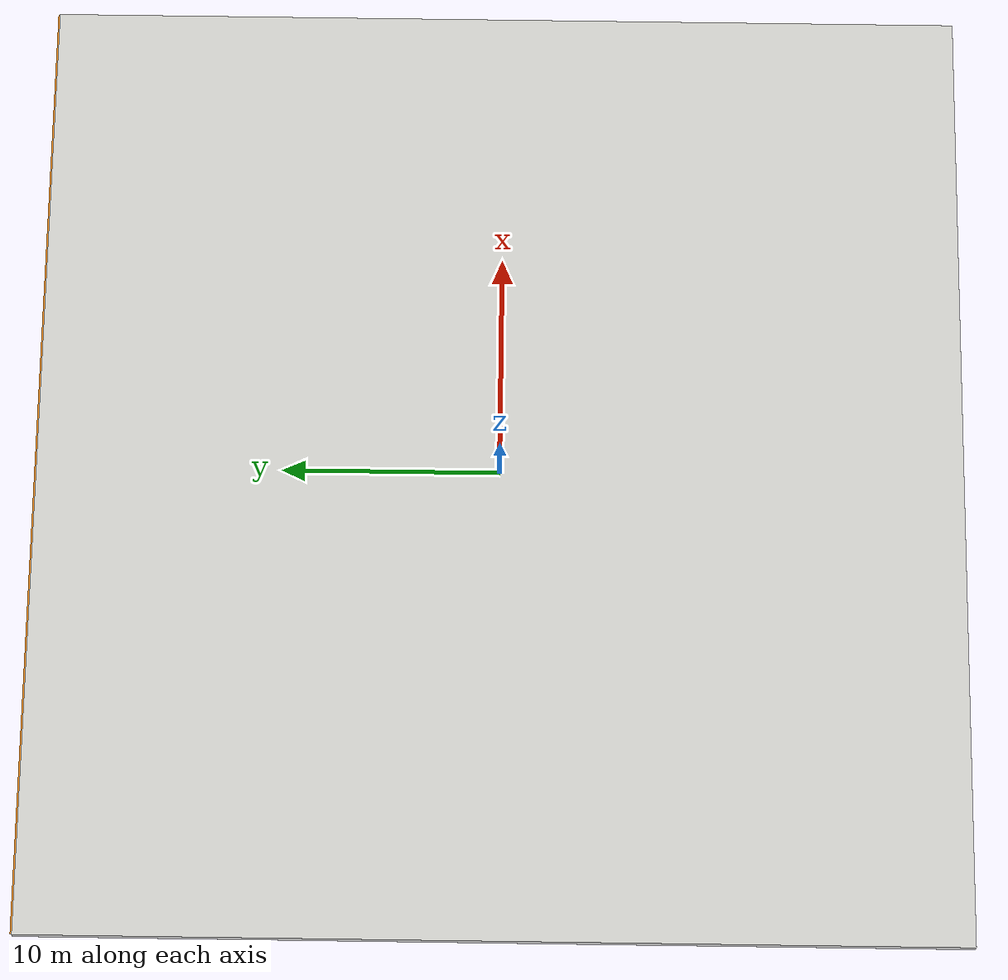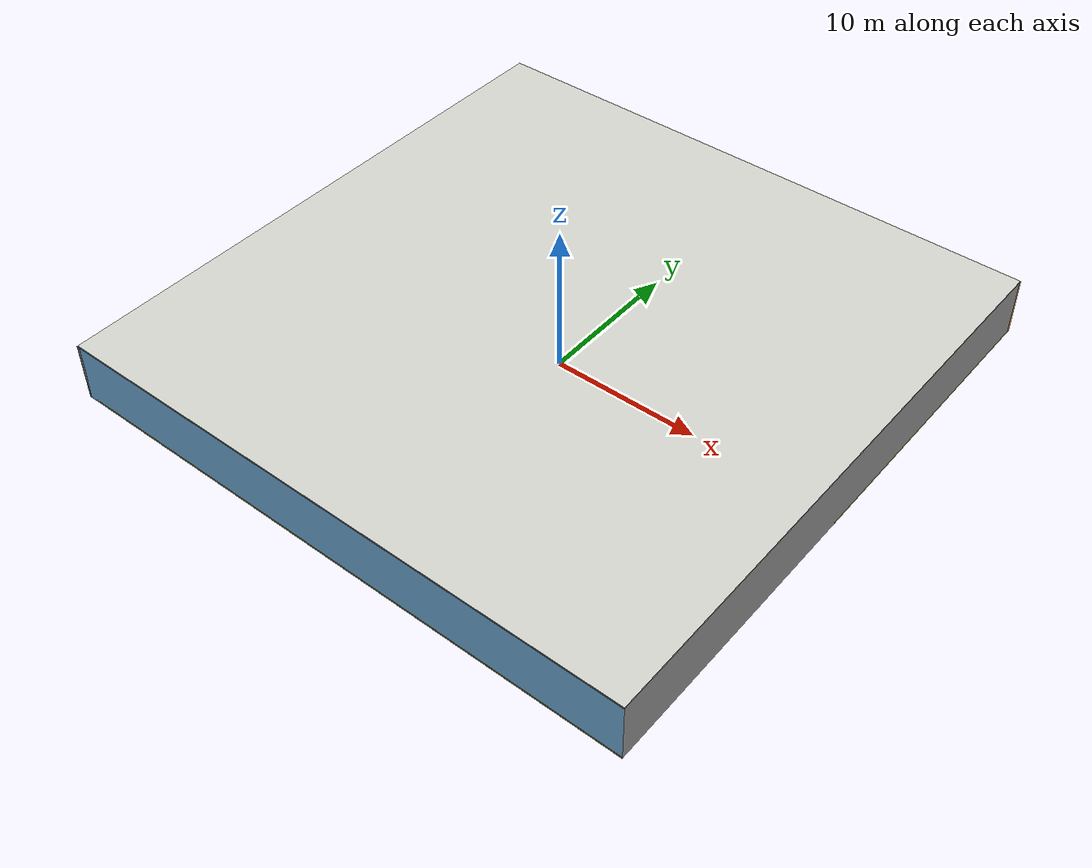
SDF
<sdf version="1.4">
 <world name="default">
  <physics type="ode">
   <max_step_size>0.001</max_step_size>
   <real_time_factor>1</real_time_factor>
   <real_time_update_rate>1000</real_time_update_rate>
   <gravity>0 0 -9.8</gravity>
  </physics>
  <scene><ambient>0.4 0.4 0.4 1</ambient><background>0.7 0.7 0.7 1</background><shadows>1</shadows></scene>
  <model name="Surrounding">
   <static>1</static>
   <link name="Ceiling">
    <collision name="Ceiling_Collision"><geometry><box><size>40 40 0.1</size></box></geometry></collision>
    <visual name="Ceiling_Visual">
     <geometry><box><size>40 40 0.1</size></box></geometry>
     <material>
      <script><uri>file://media/materials/scripts/gazebo.material</uri><name>Gazebo/CeilingTiled</name></script>
     </material>
    </visual>
    <pose>0 0 4.05 0 0 0</pose>
   </link>
   <link name="Wall_South">
    <collision name="Wall_South_Collision">
     <geometry><box><size>40 0 4</size></box></geometry>
     <pose>0 0 2 0 -0 0</pose>
    </collision>
    <visual name="Wall_South_Visual">
     <pose>0 0 2 0 -0 0</pose>
     <geometry><box><size>40 0 4</size></box></geometry>
     <material>
      <script><uri>file://media/materials/scripts/gazebo.material</uri><name>Gazebo/SkyBlue</name></script>
     </material>
    </visual>
    <velocity_decay><linear>0</linear><angular>0</angular></velocity_decay>
    <pose>0 -20 0 0 -0 0</pose>
   </link>
   <link name="Wall_East">
    <collision name="Wall_21_Collision">
     <geometry><box><size>40 0 4</size></box></geometry>
     <pose>0 0 2 0 -0 0</pose>
    </collision>
    <visual name="Wall_21_Visual">
     <pose>0 0 2 0 -0 0</pose>
     <geometry><box><size>40 0 4</size></box></geometry>
     <material>
      <script><uri>file://media/materials/scripts/gazebo.material</uri><name>Gazebo/CloudySky</name></script>
     </material>
    </visual>
    <velocity_decay><linear>0</linear><angular>0</angular></velocity_decay>
    <pose>20 0 0 0 -0 1.5708</pose>
   </link>
   <link name="Wall_North">
    <collision name="Wall_22_Collision">
     <geometry><box><size>40 0.2 4</size></box></geometry>
     <pose>0 0 2 0 -0 0</pose>
    </collision>
    <visual name="Wall_22_Visual">
     <pose>0 0 2 0 -0 0</pose>
     <geometry><box><size>40 0.2 4</size></box></geometry>
     <material>
      <script><uri>file://media/materials/scripts/gazebo.material</uri><name>Gazebo/Orange</name></script>
     </material>
    </visual>
    <velocity_decay><linear>0</linear><angular>0</angular></velocity_decay>
    <pose>0 20 0 0 -0 0</pose>
   </link>
   <link name="Wall_West">
    <collision name="Wall_23_Collision">
     <geometry><box><size>40 0.2 4</size></box></geometry>
     <pose>0 0 2 0 -0 0</pose>
    </collision>
    <visual name="Wall_23_Visual">
     <pose>0 0 2 0 -0 0</pose>
     <geometry><box><size>40 0.2 4</size></box></geometry>
     <material>
      <script><uri>file://media/materials/scripts/gazebo.material</uri><name>Gazebo/Grey</name></script>
     </material>
    </visual>
    <velocity_decay><linear>0</linear><angular>0</angular></velocity_decay>
    <pose>-20 0 0 0 0 -1.5708</pose>
   </link>
   <link name="Ground_link">
    <collision name="collision">
     <pose>0 0 .05 0 -0 0</pose>
     <geometry><box><size>40 40 0.1</size></box></geometry>
    </collision>
    <visual name="visual">
     <pose>0 0 .05 0 -0 0</pose>
     <geometry><box><size>40 40 0.1</size></box></geometry>
     <material>
      <script><uri>file://media/materials/scripts/gazebo.material</uri><name>Gazebo/Yellow</name></script>
     </material>
    </visual>
   </link>
   <static>1</static>
  </model>
  <spherical_coordinates>
   <surface_model>EARTH_WGS84</surface_model>
   <latitude_deg>0</latitude_deg>
   <longitude_deg>0</longitude_deg>
   <elevation>0</elevation>
   <heading_deg>0</heading_deg>
  </spherical_coordinates>
  <light name="lightball_0" type="diffuse">
   <diffuse>0.8 0.8 0.8 1</diffuse>
   <specular>0.2 0.2 0.2 1</specular>
   <attenuation>
    <range>100</range>
    <constant>0.7</constant>
    <linear>0.01</linear>
    <quadratic>0.001</quadratic>
   </attenuation>
   <direction>-0.5 0.1 -0.9</direction>
   <pose>19.6641678225 -13.4696421574 2.36045238017 0 0 0</pose>
  </light>
  <light name="lightball_1" type="diffuse">
   <diffuse>0.8 0.8 0.8 1</diffuse>
   <specular>0.2 0.2 0.2 1</specular>
   <attenuation>
    <range>100</range>
    <constant>0.7</constant>
    <linear>0.01</linear>
    <quadratic>0.001</quadratic>
   </attenuation>
   <direction>-0.5 0.1 -0.9</direction>
   <pose>-3.00483595941 -2.18783184697 3.30027225736 0 0 0</pose>
  </light>
  <light name="lightball_2" type="diffuse">
   <diffuse>0.8 0.8 0.8 1</diffuse>
   <specular>0.2 0.2 0.2 1</specular>
   <attenuation>
    <range>100</range>
    <constant>0.7</constant>
    <linear>0.01</linear>
    <quadratic>0.001</quadratic>
   </attenuation>
   <direction>-0.5 0.1 -0.9</direction>
   <pose>12.1797264831 8.7129959718 1.57098691591 0 0 0</pose>
  </light>
  <light name="lightball_3" type="diffuse">
   <diffuse>0.8 0.8 0.8 1</diffuse>
   <specular>0.2 0.2 0.2 1</specular>
   <attenuation>
    <range>100</range>
    <constant>0.7</constant>
    <linear>0.01</linear>
    <quadratic>0.001</quadratic>
   </attenuation>
   <direction>-0.5 0.1 -0.9</direction>
   <pose>6.83578921094 -3.87929376498 3.65816023505 0 0 0</pose>
  </light>
  <light name="lightball_4" type="diffuse">
   <diffuse>0.8 0.8 0.8 1</diffuse>
   <specular>0.2 0.2 0.2 1</specular>
   <attenuation>
    <range>100</range>
    <constant>0.7</constant>
    <linear>0.01</linear>
    <quadratic>0.001</quadratic>
   </attenuation>
   <direction>-0.5 0.1 -0.9</direction>
   <pose>-2.9161387499 -12.0742729617 1.61531192809 0 0 0</pose>
  </light>
  <include><uri>model://cabinet</uri><pose>-17.933322599 -2.25263223428 0 0 0 0.676346144585</pose></include>
  <include><uri>model://cabinet</uri><pose>-16.711964119 6.27937287298 0 0 0 0.962040402858</pose></include>
  <include>
   <uri>model://robocup_3Dsim_goal</uri>
   <pose>-18.443466207 12.6286611092 0 0 0 3.10386058934</pose>
  </include>
  <include>
   <uri>model://construction_cone</uri>
   <pose>-16.4824930669 14.3128327706 0 0 0 2.22769843418</pose>
  </include>
  <include><uri>model://table</uri><pose>-15.4006871298 -7.64319131246 0 0 0 0.959496202647</pose></include>
  <include><uri>model://table</uri><pose>-13.8605777689 1.33585387469 0 0 0 2.46966298953</pose></include>
  <include><uri>model://table</uri><pose>-7.74585779742 -3.00539952782 0 0 0 1.59629901052</pose></include>
  <include>
   <uri>model://textured_shapes</uri>
   <pose>-6.13134308386 12.7384420428 0 0 0 2.66859571003</pose>
  </include>
  <include>
   <uri>model://construction_cone</uri>
   <pose>-2.97925319854 -11.0115361345 0 0 0 2.9596922898</pose>
  </include>
  <include><uri>model://table</uri><pose>-2.74193882457 5.5804119772 0 0 0 2.88208287515</pose></include>
  <include>
   <uri>model://robocup_3Dsim_goal</uri>
   <pose>1.33076617245 -1.45144099641 0 0 0 1.75171330296</pose>
  </include>
  <include>
   <uri>model://construction_cone</uri>
   <pose>-0.683076230452 -0.694418691571 0 0 0 1.45558795184</pose>
  </include>
  <include><uri>model://table</uri><pose>0.535654472892 5.92733347487 0 0 0 1.15405366607</pose></include>
  <include>
   <uri>model://robocup_3Dsim_goal</uri>
   <pose>-0.133678750304 11.7932092139 0 0 0 1.14475895441</pose>
  </include>
  <include>
   <uri>model://construction_cone</uri>
   <pose>3.30346038756 -1.56004662659 0 0 0 0.695305286057</pose>
  </include>
  <include><uri>model://cabinet</uri><pose>3.21891464857 4.01492865358 0 0 0 0.88290283367</pose></include>
  <include><uri>model://cabinet</uri><pose>2.51442387522 6.50592667196 0 0 0 2.60819156891</pose></include>
  <include><uri>model://cabinet</uri><pose>3.08647939994 15.6762611155 0 0 0 1.90174732157</pose></include>
  <include><uri>model://cabinet</uri><pose>5.5245606049 12.8296480325 0 0 0 1.87774155981</pose></include>
  <include><uri>model://table</uri><pose>8.93620054774 0.175294060411 0 0 0 1.69457308702</pose></include>
  <include>
   <uri>model://textured_shapes</uri>
   <pose>12.3198517106 -17.3015522896 0 0 0 1.30166324774</pose>
  </include>
  <include>
   <uri>model://construction_cone</uri>
   <pose>13.6678196095 7.12509675213 0 0 0 0.935587898041</pose>
  </include>
  <include><uri>model://table</uri><pose>14.6257155633 -13.3617803723 0 0 0 1.58315685048</pose></include>
  <include>
   <uri>model://robocup_3Dsim_goal</uri>
   <pose>15.4876757573 -11.0625488162 0 0 0 1.72889373711</pose>
  </include>
  <include><uri>model://cabinet</uri><pose>15.9234368799 12.1443357257 0 0 0 1.15412974963</pose></include>
  <include>
   <uri>model://construction_cone</uri>
   <pose>17.4870580411 19.6133210183 0 0 0 0.773999238718</pose>
  </include>
 </world>
</sdf>

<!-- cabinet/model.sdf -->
<sdf version="1.5">
  <model name="cabinet">
    <static>true</static>
    <link name="cabinet_bottom_plate">
      <inertial>
        <pose>0 0 -1 0 0 0</pose>
        <inertia>
          <ixx>2.050000</ixx>
          <ixy>0</ixy>
          <ixz>0</ixz>
          <iyy>2.050000</iyy>
          <iyz>0</iyz>
          <izz>2.050000</izz>
        </inertia>
        <mass>25.000000</mass>
      </inertial>
      <collision name="cabinet_bottom_plate_geom">
        <pose>0 0 0.010000 0 0 0</pose>
        <geometry>
          <box>
            <size>0.450000 0.450000 0.020000</size>
          </box>
        </geometry>
      </collision>
      <visual name="cabinet_bottom_plate_geom_visual">
        <pose>0 0 0.010000 0 0 0</pose>
        <geometry>
          <box>
            <size>0.450000 0.450000 0.020000</size>
          </box>
        </geometry>
        <material>
          <script>
            <uri>model://media/materials/scripts/gazebo.material</uri>
            <name>Gazebo/Wood</name>
          </script>
        </material>
      </visual>
      <collision name="cabinet_bottom_plate_geom_cabinet_back_plate">
        <pose>0.235000 0 0.510000 0 0 0</pose>
        <geometry>
          <box>
            <size>0.020000 0.450000 1.020000</size>
          </box>
        </geometry>
      </collision>
      <visual name="cabinet_bottom_plate_geom_cabinet_back_plate_visual">
        <pose>0.235000 0 0.510000 0 0 0</pose>
        <geometry>
          <box>
            <size>0.020000 0.450000 1.020000</size>
          </box>
        </geometry>
        <material>
          <script>
            <uri>model://media/materials/scripts/gazebo.material</uri>
            <name>Gazebo/Wood</name>
          </script>
        </material>
      </visual>
      <collision name="cabinet_bottom_plate_geom_cabinet_left_plate">
        <pose>0 0.235000 0.510000 0 0 0</pose>
        <geometry>
          <box>
            <size>0.450000 0.020000 1.020000</size>
          </box>
        </geometry>
      </collision>
      <visual name="cabinet_bottom_plate_geom_cabinet_left_plate_visual">
        <pose>0 0.235000 0.510000 0 0 0</pose>
        <geometry>
          <box>
            <size>0.450000 0.020000 1.020000</size>
          </box>
        </geometry>
        <material>
          <script>
            <uri>model://media/materials/scripts/gazebo.material</uri>
            <name>Gazebo/Wood</name>
          </script>
        </material>
      </visual>
      <collision name="cabinet_bottom_plate_geom_cabinet_middle_plate">
        <pose>0 0 0.510000 0 0 0</pose>
        <geometry>
          <box>
            <size>0.450000 0.450000 0.020000</size>
          </box>
        </geometry>
      </collision>
      <visual name="cabinet_bottom_plate_geom_cabinet_middle_plate_visual">
        <pose>0 0 0.510000 0 0 0</pose>
        <geometry>
          <box>
            <size>0.450000 0.450000 0.020000</size>
          </box>
        </geometry>
        <material>
          <script>
            <uri>model://media/materials/scripts/gazebo.material</uri>
            <name>Gazebo/Wood</name>
          </script>
        </material>
      </visual>
      <collision name="cabinet_bottom_plate_geom_cabinet_right_plate">
        <pose>0 -0.235000 0.510000 0 0 0</pose>
        <geometry>
          <box>
            <size>0.450000 0.020000 1.020000</size>
          </box>
        </geometry>
      </collision>
      <visual name="cabinet_bottom_plate_geom_cabinet_right_plate_visual">
        <pose>0 -0.235000 0.510000 0 0 0</pose>
        <geometry>
          <box>
            <size>0.450000 0.020000 1.020000</size>
          </box>
        </geometry>
        <material>
          <script>
            <uri>model://media/materials/scripts/gazebo.material</uri>
            <name>Gazebo/Wood</name>
          </script>
        </material>
      </visual>
      <collision name="cabinet_bottom_plate_geom_cabinet_top_plate">
        <pose>0 0 1.010000 0 0 0</pose>
        <geometry>
          <box>
            <size>0.450000 0.450000 0.020000</size>
          </box>
        </geometry>
      </collision>
      <visual name="cabinet_bottom_plate_geom_cabinet_top_plate_visual">
        <pose>0 0 1.010000 0 0 0</pose>
        <geometry>
          <box>
            <size>0.450000 0.450000 0.020000</size>
          </box>
        </geometry>
        <material>
          <script>
            <uri>model://media/materials/scripts/gazebo.material</uri>
            <name>Gazebo/Wood</name>
          </script>
        </material>
      </visual>
    </link>
  </model>
</sdf>

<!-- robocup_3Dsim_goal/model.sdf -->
<sdf version="1.5">
  <model name="robocup_3d_goal">
    <static>true</static>
    <link name="left_post">
      <pose>0 1.05 0.45 0 0 0</pose>
      <collision name="collision">
        <geometry>
          <cylinder>
            <radius>0.05</radius>
            <length>0.9</length>
          </cylinder>
        </geometry>
      </collision>
      <visual name="visual">
        <geometry>
          <cylinder>
            <radius>0.05</radius>
            <length>0.9</length>
          </cylinder>
        </geometry>
        <material>
          <script>
            <uri>file://media/materials/scripts/gazebo.material</uri>
            <name>Gazebo/ZincYellow</name>
          </script>
        </material>
      </visual>
    </link>
    <link name="left_support_horiz_lower">
      <pose>0.30 1.05 0.01 0 0 0</pose>
      <collision name="collision">
        <geometry>
          <box>
            <size>0.50 0.02 0.02</size>
          </box>
        </geometry>
      </collision>
      <visual name="visual">
        <geometry>
          <box>
            <size>0.50 0.02 0.02</size>
          </box>
        </geometry>
        <material>
          <script>
            <uri>file://media/materials/scripts/gazebo.material</uri>
            <name>Gazebo/White</name>
          </script>
        </material>
      </visual>
    </link>
    <link name="left_support_horiz_upper">
      <pose>0.30 1.05 0.79 0 0 0</pose>
      <collision name="collision">
        <geometry>
          <box>
            <size>0.50 0.02 0.02</size>
          </box>
        </geometry>
      </collision>
      <visual name="visual">
        <geometry>
          <box>
            <size>0.50 0.02 0.02</size>
          </box>
        </geometry>
        <material>
          <script>
            <uri>file://media/materials/scripts/gazebo.material</uri>
            <name>Gazebo/White</name>
          </script>
        </material>
      </visual>
    </link>
    <link name="left_support_vertical">
      <pose>0.56 1.05 0.4 0 1.5708 0</pose>
      <collision name="collision">
        <geometry>
          <box>
            <size>0.80 0.02 0.02</size>
          </box>
        </geometry>
      </collision>
      <visual name="visual">
        <geometry>
          <box>
            <size>0.80 0.02 0.02</size>
          </box>
        </geometry>
        <material>
          <script>
            <uri>file://media/materials/scripts/gazebo.material</uri>
            <name>Gazebo/White</name>
          </script>
        </material>
      </visual>
    </link>
    <link name="right_support_horiz_lower">
      <pose>0.30 -1.05 0.01 0 0 0</pose>
      <collision name="collision">
        <geometry>
          <box>
            <size>0.50 0.02 0.02</size>
          </box>
        </geometry>
      </collision>
      <visual name="visual">
        <geometry>
          <box>
            <size>0.50 0.02 0.02</size>
          </box>
        </geometry>
        <material>
          <script>
            <uri>file://media/materials/scripts/gazebo.material</uri>
            <name>Gazebo/White</name>
          </script>
        </material>
      </visual>
    </link>
    <link name="right_support_horiz_upper">
      <pose>0.30 -1.05 0.79 0 0 0</pose>
      <collision name="collision">
        <geometry>
          <box>
            <size>0.50 0.02 0.02</size>
          </box>
        </geometry>
      </collision>
      <visual name="visual">
        <geometry>
          <box>
            <size>0.50 0.02 0.02</size>
          </box>
        </geometry>
        <material>
          <script>
            <uri>file://media/materials/scripts/gazebo.material</uri>
            <name>Gazebo/White</name>
          </script>
        </material>
      </visual>
    </link>
    <link name="right_support_vertical">
      <pose>0.56 -1.05 0.4 0 1.5708 0</pose>
      <collision name="collision">
        <geometry>
          <box>
            <size>0.80 0.02 0.02</size>
          </box>
        </geometry>
      </collision>
      <visual name="visual">
        <geometry>
          <box>
            <size>0.80 0.02 0.02</size>
          </box>
        </geometry>
        <material>
          <script>
            <uri>file://media/materials/scripts/gazebo.material</uri>
            <name>Gazebo/White</name>
          </script>
        </material>
      </visual>
    </link>
    <link name="center_support_horiz_lower">
      <pose>0.56 0 0.01 0 1.5708 0</pose>
      <collision name="collision">
        <geometry>
          <box>
            <size>0.02 2.08 0.02</size>
          </box>
        </geometry>
      </collision>
      <visual name="visual">
        <geometry>
          <box>
            <size>0.02 2.08 0.02</size>
          </box>
        </geometry>
        <material>
          <script>
            <uri>file://media/materials/scripts/gazebo.material</uri>
            <name>Gazebo/White</name>
          </script>
        </material>
      </visual>
    </link>
    <link name="center_support_horiz_upper">
      <pose>0.56 0 0.79 0 1.5708 0</pose>
      <collision name="collision">
        <geometry>
          <box>
            <size>0.02 2.08 0.02</size>
          </box>
        </geometry>
      </collision>
      <visual name="visual">
        <geometry>
          <box>
            <size>0.02 2.08 0.02</size>
          </box>
        </geometry>
        <material>
          <script>
            <uri>file://media/materials/scripts/gazebo.material</uri>
            <name>Gazebo/White</name>
          </script>
        </material>
      </visual>
    </link>
    <link name="right_post">
      <pose>0 -1.05 0.45 0 0 0</pose>
      <collision name="collision">
        <geometry>
          <cylinder>
            <radius>0.05</radius>
            <length>0.9</length>
          </cylinder>
        </geometry>
      </collision>
      <visual name="visual">
        <geometry>
          <cylinder>
            <radius>0.05</radius>
            <length>0.9</length>
          </cylinder>
        </geometry>
        <material>
          <script>
            <uri>file://media/materials/scripts/gazebo.material</uri>
            <name>Gazebo/ZincYellow</name>
          </script>
        </material>
      </visual>
    </link>
    <link name="crossbar">
      <pose>0 0 0.85 1.57 1.57 0</pose>
      <collision name="collision">
        <geometry>
          <cylinder>
            <radius>0.05</radius>
            <length>2.0</length>
          </cylinder>
        </geometry>
      </collision>
      <visual name="visual">
        <geometry>
          <cylinder>
            <radius>0.05</radius>
            <length>2.0</length>
          </cylinder>
        </geometry>
        <material>
          <script>
            <uri>file://media/materials/scripts/gazebo.material</uri>
            <name>Gazebo/ZincYellow</name>
          </script>
        </material>
      </visual>
    </link>
    <link name="center_net">
      <pose>0.56 0 0.40 0 0 0</pose>
      <collision name="collision">
        <geometry>
          <box>
            <size>0.01 2.1 0.80</size>
          </box>
        </geometry>
      </collision>
      <visual name="visual">
        <geometry>
          <box>
            <size>0.01 2.1 0.80</size>
          </box>
        </geometry>
        <material>
          <script>
            <uri>model://../model_source/models/robocup09_spl_field/materials/scripts/</uri>
            <uri>model://../model_source/models/robocup09_spl_field/materials/textures/</uri>
            <name>RoboCup/Net</name>
          </script>
        </material>
      </visual>
    </link>
    <link name="left_net">
      <pose>0.30 1.05 0.40 0 0 0</pose>
      <collision name="collision">
        <geometry>
          <box>
            <size>0.50 0.01 0.76</size>
          </box>
        </geometry>
      </collision>
      <visual name="visual">
        <geometry>
          <box>
            <size>0.50 0.01 0.76</size>
          </box>
        </geometry>
        <material>
          <script>
            <uri>model://../model_source/models/robocup09_spl_field/materials/scripts/</uri>
            <uri>model://../model_source/models/robocup09_spl_field/materials/textures/</uri>
            <name>RoboCup/Net</name>
          </script>
        </material>
      </visual>
    </link>
    <link name="right_net">
      <pose>0.30 -1.05 0.40 0 0 0</pose>
      <collision name="collision">
        <geometry>
          <box>
            <size>0.50 0.01 0.76</size>
          </box>
        </geometry>
      </collision>
      <visual name="visual">
        <geometry>
          <box>
            <size>0.50 0.01 0.76</size>
          </box>
        </geometry>
        <material>
          <script>
            <uri>model://../model_source/models/robocup09_spl_field/materials/scripts/</uri>
            <uri>model://../model_source/models/robocup09_spl_field/materials/textures/</uri>
            <name>RoboCup/Net</name>
          </script>
        </material>
      </visual>
    </link>
  </model>
</sdf>

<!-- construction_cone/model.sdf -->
<sdf version="1.5">
  <model name="Construction Cone">
    <link name="link">
      <collision name="collision">
        <geometry>
          <mesh>
            <scale>10 10 10</scale>
            <uri>file://isr-testbed/construction_cone/meshes/construction_cone.dae</uri>
          </mesh>
        </geometry>
      </collision>
      <visual name="visual">
        <geometry>
          <mesh>
            <scale>10 10 10</scale>
            <uri>file://isr-testbed/construction_cone/meshes/construction_cone.dae</uri>
          </mesh>
        </geometry>
      </visual>
    </link>
  </model>
</sdf>

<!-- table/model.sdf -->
<sdf version="1.5">
  <model name="table">
    <static>true</static>
    <link name="link">
      <collision name="surface">
        <pose>0 0 1.0 0 0 0</pose>
        <geometry>
          <box>
            <size>1.5 0.8 0.03</size>
          </box>
        </geometry>
        <surface>
          <friction>
            <ode>
              <mu>0.6</mu>
              <mu2>0.6</mu2>
            </ode>
          </friction>
        </surface>
      </collision>
      <visual name="visual1">
        <pose>0 0 1.0 0 0 0</pose>
        <geometry>
          <box>
            <size>1.5 0.8 0.03</size>
          </box>
        </geometry>
        <material>
          <script>
            <uri>model://media/materials/scripts/gazebo.material</uri>
            <name>Gazebo/Wood</name>
          </script>
        </material>
      </visual>
      <collision name="front_left_leg">
        <pose>0.68 0.38 0.5 0 0 0</pose>
        <geometry>
          <cylinder>
            <radius>0.02</radius>
            <length>1.0</length>
          </cylinder>
        </geometry>
      </collision>
      <visual name="front_left_leg">
        <pose>0.68 0.38 0.5 0 0 0</pose>
        <geometry>
          <cylinder>
            <radius>0.02</radius>
            <length>1.0</length>
          </cylinder>
        </geometry>
        <material>
          <script>
            <uri>model://media/materials/scripts/gazebo.material</uri>
            <name>Gazebo/Grey</name>
          </script>
        </material>
      </visual>
      <collision name="front_right_leg">
        <pose>0.68 -0.38 0.5 0 0 0</pose>
        <geometry>
          <cylinder>
            <radius>0.02</radius>
            <length>1.0</length>
          </cylinder>
        </geometry>
      </collision>
      <visual name="front_right_leg">
        <pose>0.68 -0.38 0.5 0 0 0</pose>
        <geometry>
          <cylinder>
            <radius>0.02</radius>
            <length>1.0</length>
          </cylinder>
        </geometry>
        <material>
          <script>
            <uri>model://media/materials/scripts/gazebo.material</uri>
            <name>Gazebo/Grey</name>
          </script>
        </material>
      </visual>
      <collision name="back_right_leg">
        <pose>-0.68 -0.38 0.5 0 0 0</pose>
        <geometry>
          <cylinder>
            <radius>0.02</radius>
            <length>1.0</length>
          </cylinder>
        </geometry>
      </collision>
      <visual name="back_right_leg">
        <pose>-0.68 -0.38 0.5 0 0 0</pose>
        <geometry>
          <cylinder>
            <radius>0.02</radius>
            <length>1.0</length>
          </cylinder>
        </geometry>
        <material>
          <script>
            <uri>model://media/materials/scripts/gazebo.material</uri>
            <name>Gazebo/Grey</name>
          </script>
        </material>
      </visual>
      <collision name="back_left_leg">
        <pose>-0.68 0.38 0.5 0 0 0</pose>
        <geometry>
          <cylinder>
            <radius>0.02</radius>
            <length>1.0</length>
          </cylinder>
        </geometry>
      </collision>
      <visual name="back_left_leg">
        <pose>-0.68 0.38 0.5 0 0 0</pose>
        <geometry>
          <cylinder>
            <radius>0.02</radius>
            <length>1.0</length>
          </cylinder>
        </geometry>
        <material>
          <script>
            <uri>model://media/materials/scripts/gazebo.material</uri>
            <name>Gazebo/Grey</name>
          </script>
        </material>
      </visual>
    </link>
  </model>
</sdf>

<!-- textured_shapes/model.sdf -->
<sdf version="1.6">
  <model name="textured_shapes">
    <pose>0 0 0.5 0 0 0</pose>
    <link name="box">
      <pose>0 -1.5 0 0 0 0</pose>
      <collision name="collision">
        <geometry>
          <box>
            <size>1 1 1</size>
          </box>
        </geometry>
      </collision>
      <visual name="visual">
        <geometry>
          <box>
            <size>1 1 1</size>
          </box>
        </geometry>
        <material>
          <script>
            <uri>model://../model_source/models/textured_shapes/materials/scripts</uri>
            <uri>model://../model_source/models/textured_shapes/materials/textures</uri>
            <name>TexturedShape/Squares</name>
          </script>
        </material>
      </visual>
    </link>
    <link name="sphere">
      <collision name="collision">
        <geometry>
          <sphere>
            <radius>0.5</radius>
          </sphere>
        </geometry>
      </collision>
      <visual name="visual">
        <geometry>
          <sphere>
            <radius>0.5</radius>
          </sphere>
        </geometry>
        <material>
          <script>
            <uri>model://../model_source/models/textured_shapes/materials/scripts</uri>
            <uri>model://../model_source/models/textured_shapes/materials/textures</uri>
            <name>TexturedShape/Squares</name>
          </script>
        </material>
      </visual>
    </link>
    <link name="cylinder">
      <pose>0 1.5 0 0 0 0</pose>
      <collision name="collision">
        <geometry>
          <cylinder>
            <radius>0.5</radius>
            <length>1</length>
          </cylinder>
        </geometry>
      </collision>
      <visual name="visual">
        <geometry>
          <cylinder>
            <radius>0.5</radius>
            <length>1</length>
          </cylinder>
        </geometry>
        <material>
          <script>
            <uri>model://../model_source/models/textured_shapes/materials/scripts</uri>
            <uri>model://../model_source/models/textured_shapes/materials/textures</uri>
            <name>TexturedShape/Squares</name>
          </script>
        </material>
      </visual>
    </link>
  </model>
</sdf>
